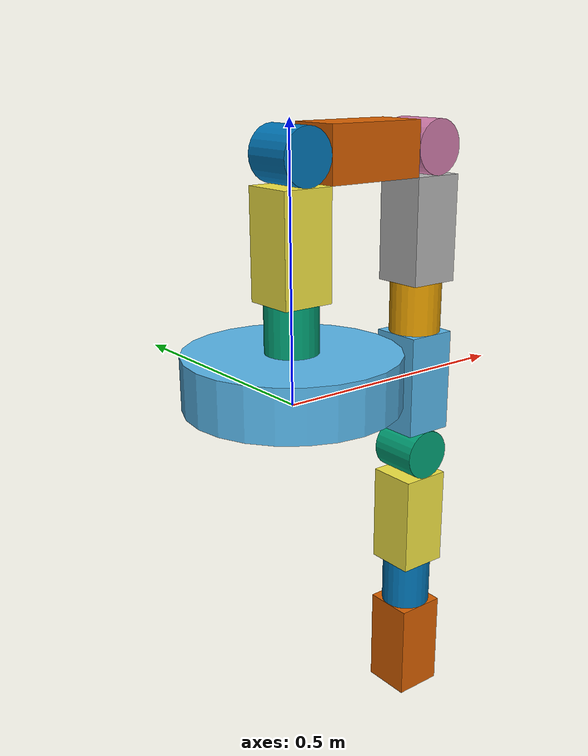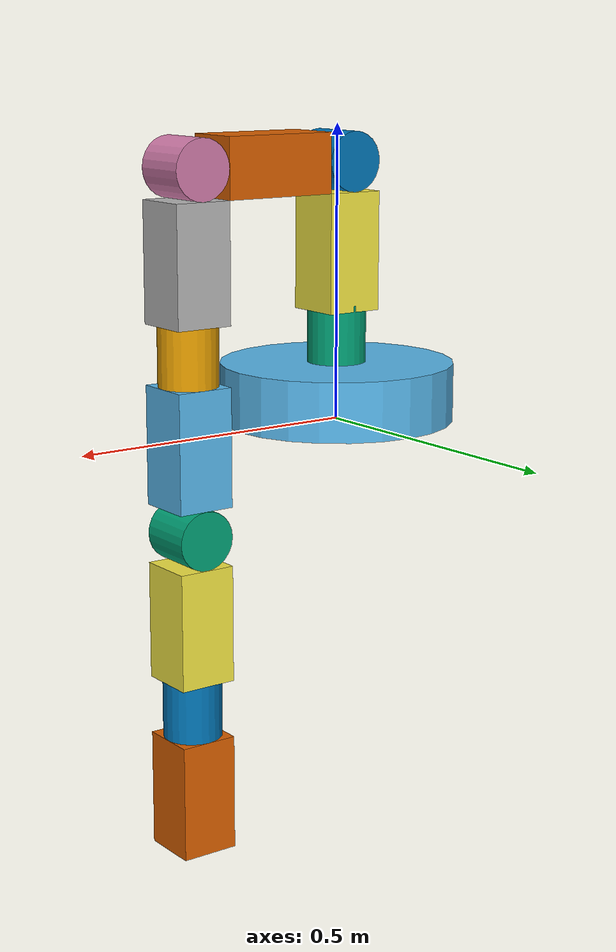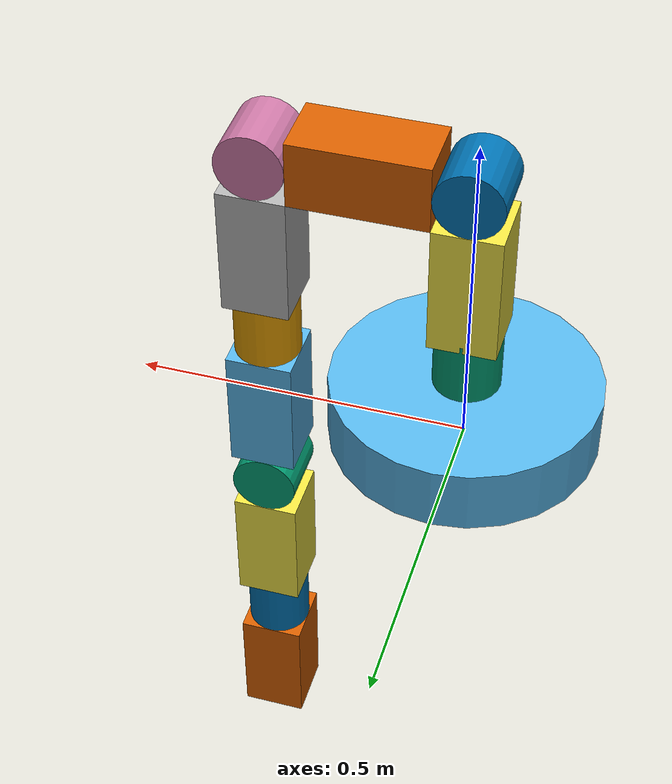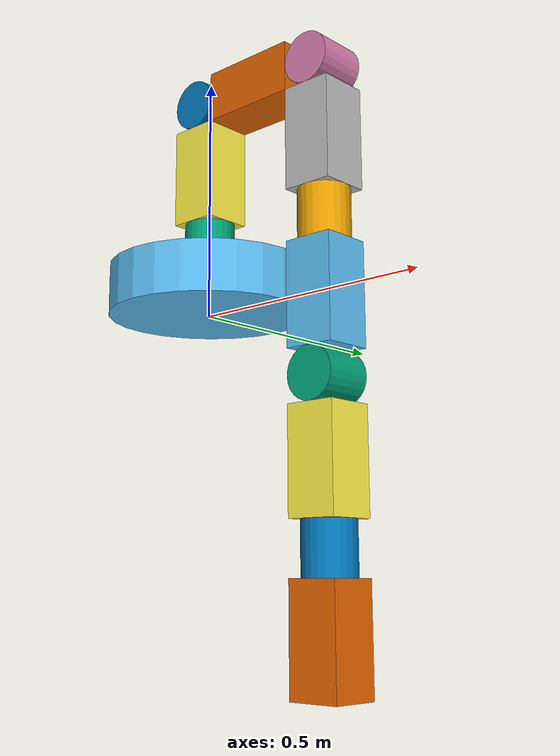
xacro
<?xml version="1.0" ?>
<!-- |    This document was autogenerated by xacro from /home/robotics/ws_moveit/src/urdf/test_arm_gazebo.urdf.xacro | -->
<!-- |    EDITING THIS FILE BY HAND IS NOT RECOMMENDED                                 | -->
<robot name="ros_project">
    <link name="world" />
    <joint name="base_joint" type="fixed">
        <parent link="world" />
        <child link="base_link" />
        <origin xyz="0 0 0" />
    </joint>
    <link name="base_link">
        <visual>
            <geometry>
                <cylinder length="0.1" radius="0.2" />
            </geometry>
            <origin xyz="0 0 0.05" />
        </visual>
        <collision>
            <geometry>
                <cylinder length="0.1" radius="0.2" />
            </geometry>
            <origin xyz="0 0 0.05" />
        </collision>
        <inertial>
            <mass value="1" />
            <inertia ixx="1.0" ixy="0.0" ixz="0.0" iyy="1.0" iyz="0.0" izz="1.0" />
            <origin xyz="0 0 0" rpy="0 0 0" />
        </inertial>
    </link>
    <link name="joint1">
        <visual>
            <geometry>
                <cylinder length="0.1" radius="0.05" />
            </geometry>
            <origin rpy="0 0 0" xyz="0 0 0" />
        </visual>
        <collision>
            <geometry>
                <cylinder length="0.1" radius="0.05" />
            </geometry>
            <origin rpy="0 0 0" xyz="0 0 0" />
        </collision>
        <inertial>
            <mass value="1" />
            <inertia ixx="1.0" ixy="0.0" ixz="0.0" iyy="1.0" iyz="0.0" izz="1.0" />
            <origin xyz="0 0 0" rpy="0 0 0" />
        </inertial>
    </link>
    <joint name="l0_to_j1" type="continuous">
        <axis rpy="0 0 0" xyz="0 0 1" />
        <parent link="base_link" />
        <child link="joint1" />
        <origin rpy="0 0 0" xyz="0 0 0.15000000000000002" />
    </joint>
    <transmission name="shoulder_yaw">
        <type>transmission_interface/SimpleTransmission</type>
        <joint name="l0_to_j1">
            <hardwareInterface>hardware_interface/PositionJointInterface</hardwareInterface>
        </joint>
        <actuator name="$shoulder_yaw_motor">
            <mechanicalReduction>1</mechanicalReduction>
            <hardwareInterface>hardware_interface/EffortJointInterface</hardwareInterface>
        </actuator>

    </transmission>
    <link name="link1">
        <visual>
            <geometry>
                <box size="0.1 0.1 0.2" />
            </geometry>
            <origin rpy="1.57 0 0" xyz="0 -0.15000000000000002 0" />
        </visual>
        <collision>
            <geometry>
                <box size="0.1 0.1 0.2" />
            </geometry>
            <origin rpy="1.57 0 0" xyz="0 -0.15000000000000002 0" />
        </collision>
        <inertial>
            <mass value="1" />
            <inertia ixx="1.0" ixy="0.0" ixz="0.0" iyy="1.0" iyz="0.0" izz="1.0" />
            <origin xyz="0 0 0" rpy="0 0 0" />
        </inertial>
    </link>
    <joint name="j1_to_l1" type="fixed">
        <parent link="joint1" />
        <child link="link1" />
        <origin rpy="1.57 0 0" xyz="0 0 0.29" />
    </joint>
    <link name="joint2">
        <visual>
            <geometry>
                <cylinder length="0.1" radius="0.05" />
            </geometry>
            <origin rpy="0 0 0" xyz="0 0 0" />
        </visual>
        <collision>
            <geometry>
                <cylinder length="0.1" radius="0.05" />
            </geometry>
            <origin rpy="0 0 0" xyz="0 0 0" />
        </collision>
        <inertial>
            <mass value="1" />
            <inertia ixx="1.0" ixy="0.0" ixz="0.0" iyy="1.0" iyz="0.0" izz="1.0" />
            <origin xyz="0 0 0" rpy="0 0 0" />
        </inertial>
    </link>
    <joint name="l1_to_j2" type="revolute">
        <axis rpy="0 0 0" xyz="0 0 1" />
        <limit effort="1000" lower="0" upper="3.14" velocity="0.5" />
        <parent link="link1" />
        <child link="joint2" />
        <origin rpy="0 0 0" xyz="0 0 0" />
    </joint>
    <transmission name="shoulder_roll">
        <type>transmission_interface/SimpleTransmission</type>
        <joint name="l1_to_j2">
            <hardwareInterface>hardware_interface/PositionJointInterface</hardwareInterface>
        </joint>
        <actuator name="$shoulder_roll_motor">
            <mechanicalReduction>1</mechanicalReduction>
            <hardwareInterface>hardware_interface/EffortJointInterface</hardwareInterface>
        </actuator>

    </transmission>
    <link name="link2">
        <visual>
            <geometry>
                <box size="0.1 0.1 0.2" />
            </geometry>
            <origin rpy="0 1.57 0" xyz="-0.15000000000000002 0 0" />
        </visual>
        <collision>
            <geometry>
                <box size="0.1 0.1 0.2" />
            </geometry>
            <origin rpy="0 1.57 0" xyz="-0.15000000000000002 0 0" />
        </collision>
        <inertial>
            <mass value="1" />
            <inertia ixx="1.0" ixy="0.0" ixz="0.0" iyy="1.0" iyz="0.0" izz="1.0" />
            <origin xyz="0 0 0" rpy="0 0 0" />
        </inertial>
    </link>
    <joint name="j2_to_l2" type="fixed">
        <parent link="joint2" />
        <child link="link2" />
        <origin rpy="0 0 0" xyz="0.30000000000000004 0 0" />
    </joint>
    <link name="joint3">
        <visual>
            <geometry>
                <cylinder length="0.1" radius="0.05" />
            </geometry>
            <origin rpy="0 0 0" xyz="0 0 0" />
        </visual>
        <collision>
            <geometry>
                <cylinder length="0.1" radius="0.05" />
            </geometry>
            <origin rpy="0 0 0" xyz="0 0 0" />
        </collision>
        <inertial>
            <mass value="1" />
            <inertia ixx="1.0" ixy="0.0" ixz="0.0" iyy="1.0" iyz="0.0" izz="1.0" />
            <origin xyz="0 0 0" rpy="0 0 0" />
        </inertial>
    </link>
    <joint name="l2_to_j3" type="revolute">
        <axis rpy="0 0 0" xyz="0 0 1" />
        <limit effort="1000" lower="0" upper="3.14" velocity="0.5" />
        <parent link="link2" />
        <child link="joint3" />
        <origin rpy="0 0 0" xyz="0 0 0" />
    </joint>
    <transmission name="elbow">
        <type>transmission_interface/SimpleTransmission</type>
        <joint name="l2_to_j3">
            <hardwareInterface>hardware_interface/PositionJointInterface</hardwareInterface>
        </joint>
        <actuator name="$elbow_motor">
            <mechanicalReduction>1</mechanicalReduction>
            <hardwareInterface>hardware_interface/EffortJointInterface</hardwareInterface>
        </actuator>

    </transmission>
    <link name="link3">
        <visual>
            <geometry>
                <box size="0.1 0.1 0.2" />
            </geometry>
            <origin rpy="0 0 0" xyz="0 0 0.15000000000000002" />
        </visual>
        <collision>
            <geometry>
                <box size="0.1 0.1 0.2" />
            </geometry>
            <origin rpy="0 0 0" xyz="0 0.15000000000000002 0" />
        </collision>
        <inertial>
            <mass value="1" />
            <inertia ixx="1.0" ixy="0.0" ixz="0.0" iyy="1.0" iyz="0.0" izz="1.0" />
            <origin xyz="0 0 0" rpy="0 0 0" />
        </inertial>
    </link>
    <joint name="j3_to_l3" type="fixed">
        <parent link="joint3" />
        <child link="link3" />
        <origin rpy="1.57 0 0" xyz="0 0 0" />
    </joint>
    <link name="joint4">
        <visual>
            <geometry>
                <cylinder length="0.1" radius="0.05" />
            </geometry>
            <origin rpy="0 0 0" xyz="0 0 0" />
        </visual>
        <collision>
            <geometry>
                <cylinder length="0.1" radius="0.05" />
            </geometry>
            <origin rpy="0 0 0" xyz="0 0 0" />
        </collision>
        <inertial>
            <mass value="1" />
            <inertia ixx="1.0" ixy="0.0" ixz="0.0" iyy="1.0" iyz="0.0" izz="1.0" />
            <origin xyz="0 0 0" rpy="0 0 0" />
        </inertial>
    </link>
    <joint name="l3_to_j4" type="revolute">
        <axis rpy="0 0 0" xyz="0 0 1" />
        <limit effort="1000" lower="-1.57" upper="1.57" velocity="0.5" />
        <parent link="link3" />
        <child link="joint4" />
        <origin rpy="0 0 0" xyz="0 0 0.30000000000000004" />
    </joint>
    <transmission name="wrist_roll">
        <type>transmission_interface/SimpleTransmission</type>
        <joint name="l3_to_j4">
            <hardwareInterface>hardware_interface/PositionJointInterface</hardwareInterface>
        </joint>
        <actuator name="$wrist_roll_motor">
            <mechanicalReduction>1</mechanicalReduction>
            <hardwareInterface>hardware_interface/EffortJointInterface</hardwareInterface>
        </actuator>

    </transmission>
    <link name="link4">
        <visual>
            <geometry>
                <box size="0.1 0.1 0.2" />
            </geometry>
            <origin rpy="1.57 0 0" xyz="0 0.15000000000000002 0" />
        </visual>
        <collision>
            <geometry>
                <box size="0.1 0.1 0.2" />
            </geometry>
            <origin rpy="1.57 0 0" xyz="0 0.15000000000000002 0" />
        </collision>
        <inertial>
            <mass value="1" />
            <inertia ixx="1.0" ixy="0.0" ixz="0.0" iyy="1.0" iyz="0.0" izz="1.0" />
            <origin xyz="0 0 0" rpy="0 0 0" />
        </inertial>
    </link>
    <joint name="j4_to_l4" type="fixed">
        <parent link="joint4" />
        <child link="link4" />
        <origin rpy="-1.57 0 0" xyz="0 0 0.30000000000000004" />
    </joint>
    <link name="joint5">
        <visual>
            <geometry>
                <cylinder length="0.1" radius="0.05" />
            </geometry>
            <origin rpy="0 0 0" xyz="0 0 0" />
        </visual>
        <collision>
            <geometry>
                <cylinder length="0.1" radius="0.05" />
            </geometry>
            <origin rpy="0 0 0" xyz="0 0 0" />
        </collision>
        <inertial>
            <mass value="1" />
            <inertia ixx="1.0" ixy="0.0" ixz="0.0" iyy="1.0" iyz="0.0" izz="1.0" />
            <origin xyz="0 0 0" rpy="0 0 0" />
        </inertial>
    </link>
    <joint name="l4_to_j5" type="revolute">
        <axis rpy="0 0 0" xyz="0 0 1" />
        <limit effort="1000" lower="-1.57" upper="1.57" velocity="0.5" />
        <parent link="link4" />
        <child link="joint5" />
        <origin rpy="0 0 0" xyz="0 0 0" />
    </joint>
    <transmission name="wrist_pitch">
        <type>transmission_interface/SimpleTransmission</type>
        <joint name="l4_to_j5">
            <hardwareInterface>hardware_interface/PositionJointInterface</hardwareInterface>
        </joint>
        <actuator name="$wrist_pitch_motor">
            <mechanicalReduction>1</mechanicalReduction>
            <hardwareInterface>hardware_interface/EffortJointInterface</hardwareInterface>
        </actuator>

    </transmission>
    <link name="link5">
        <visual>
            <geometry>
                <box size="0.1 0.1 0.2" />
            </geometry>
            <origin rpy="0 0 0" xyz="0 0 0.15000000000000002" />
        </visual>
        <collision>
            <geometry>
                <box size="0.1 0.1 0.2" />
            </geometry>
            <origin rpy="0 0 0" xyz="0 0 0.15000000000000002" />
        </collision>
        <inertial>
            <mass value="1" />
            <inertia ixx="1.0" ixy="0.0" ixz="0.0" iyy="1.0" iyz="0.0" izz="1.0" />
            <origin xyz="0 0 0" rpy="0 0 0" />
        </inertial>
    </link>
    <joint name="j5_to_l5" type="fixed">
        <parent link="joint5" />
        <child link="link5" />
        <origin rpy="1.57 0 0" xyz="0 0 0" />
    </joint>
    <link name="joint6">
        <visual>
            <geometry>
                <cylinder length="0.1" radius="0.05" />
            </geometry>
            <origin rpy="0 0 0" xyz="0 0 0" />
        </visual>
        <collision>
            <geometry>
                <cylinder length="0.1" radius="0.05" />
            </geometry>
            <origin rpy="0 0 0" xyz="0 0 0" />
        </collision>
        <inertial>
            <mass value="1" />
            <inertia ixx="1.0" ixy="0.0" ixz="0.0" iyy="1.0" iyz="0.0" izz="1.0" />
            <origin xyz="0 0 0" rpy="0 0 0" />
        </inertial>
    </link>
    <joint name="l5_to_j6" type="revolute">
        <axis rpy="0 0 0" xyz="0 0 1" />
        <limit effort="1000" lower="-1.57" upper="1.57" velocity="0.5" />
        <parent link="link5" />
        <child link="joint6" />
        <origin rpy="0 0 0" xyz="0 0 0.30000000000000004" />
    </joint>
    <transmission name="wrist_yaw">
        <type>transmission_interface/SimpleTransmission</type>
        <joint name="l5_to_j6">
            <hardwareInterface>hardware_interface/PositionJointInterface</hardwareInterface>
        </joint>
        <actuator name="$wrist_yaw_motor">
            <mechanicalReduction>1</mechanicalReduction>
            <hardwareInterface>hardware_interface/EffortJointInterface</hardwareInterface>
        </actuator>

    </transmission>
    <link name="link6">
        <visual>
            <geometry>
                <box size="0.1 0.1 0.2" />
            </geometry>
            <origin rpy="0 0 0" xyz="0 0 -0.1" />
        </visual>
        <collision>
            <geometry>
                <box size="0.1 0.1 0.2" />
            </geometry>
            <origin rpy="0 0 0" xyz="0 0 -0.1" />
        </collision>
        <inertial>
            <mass value="1" />
            <inertia ixx="1.0" ixy="0.0" ixz="0.0" iyy="1.0" iyz="0.0" izz="1.0" />
            <origin xyz="0 0 0" rpy="0 0 0" />
        </inertial>
    </link>
    <joint name="j6_to_l6" type="fixed">
        <parent link="joint6" />
        <child link="link6" />
        <origin rpy="0 0 1.57" xyz="0 0 0.25" />
    </joint>
    <gazebo>
        <plugin filename="libgazebo_ros_control.so" name="gazebo_ros_control">
            <robotNamespace>/</robotNamespace>
        </plugin>
    </gazebo>
</robot>
